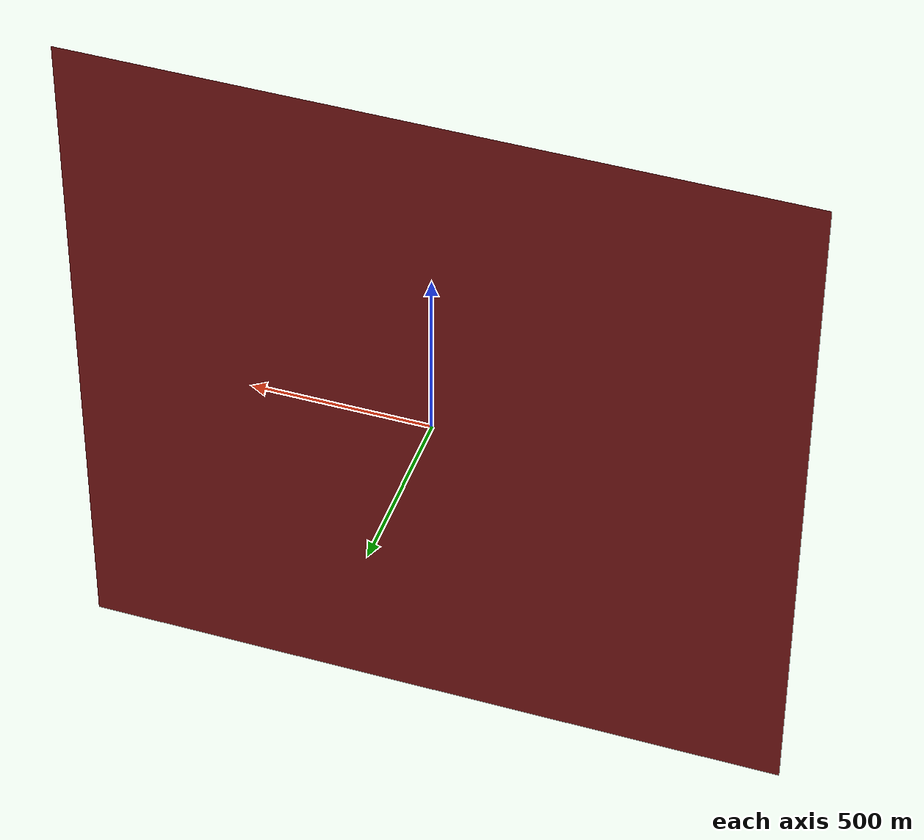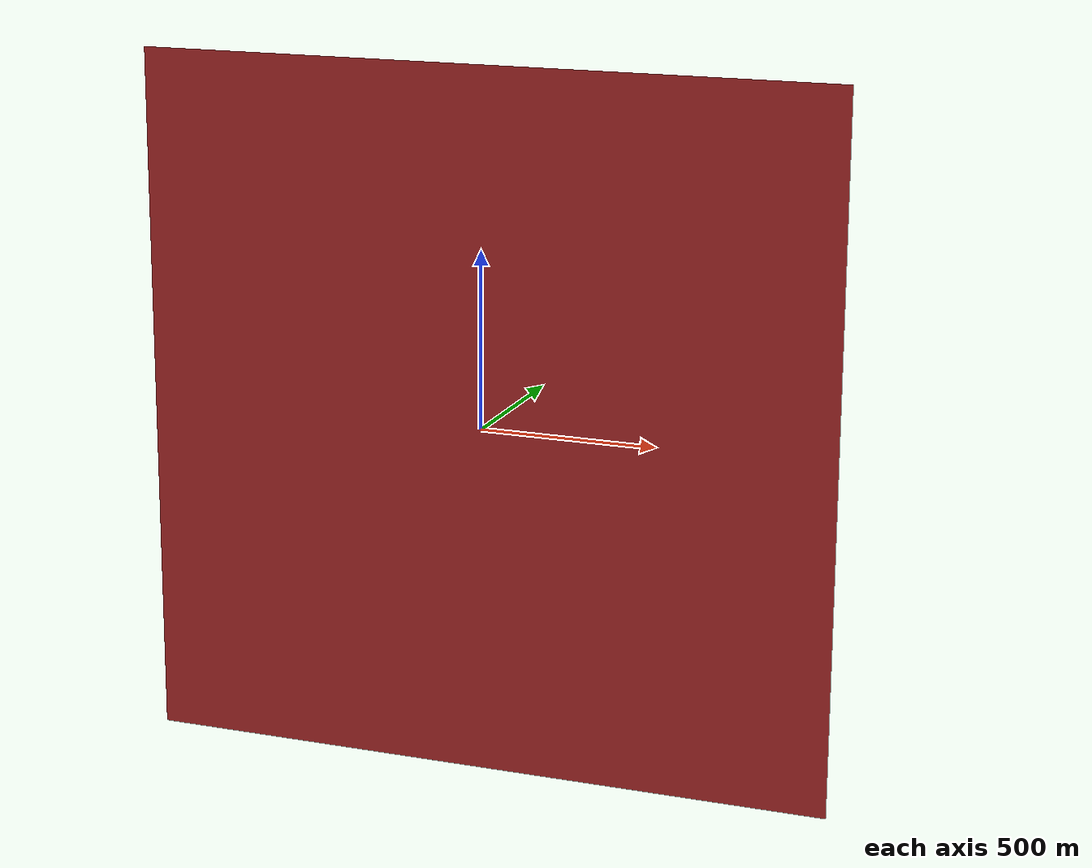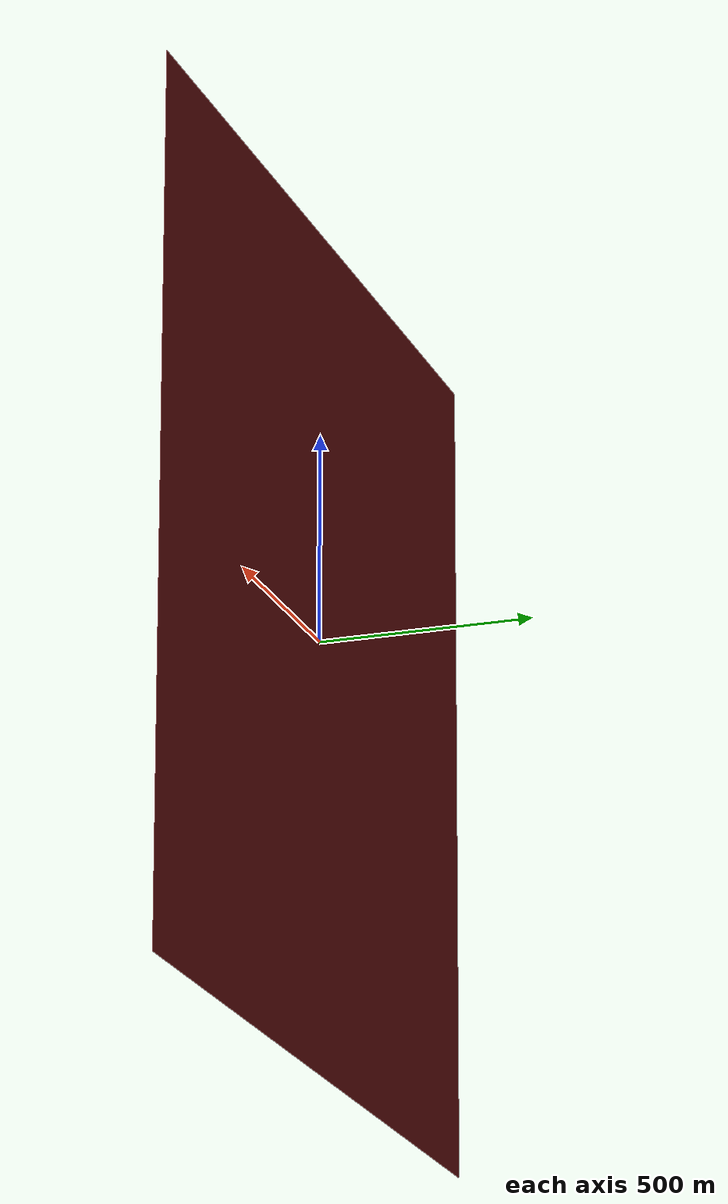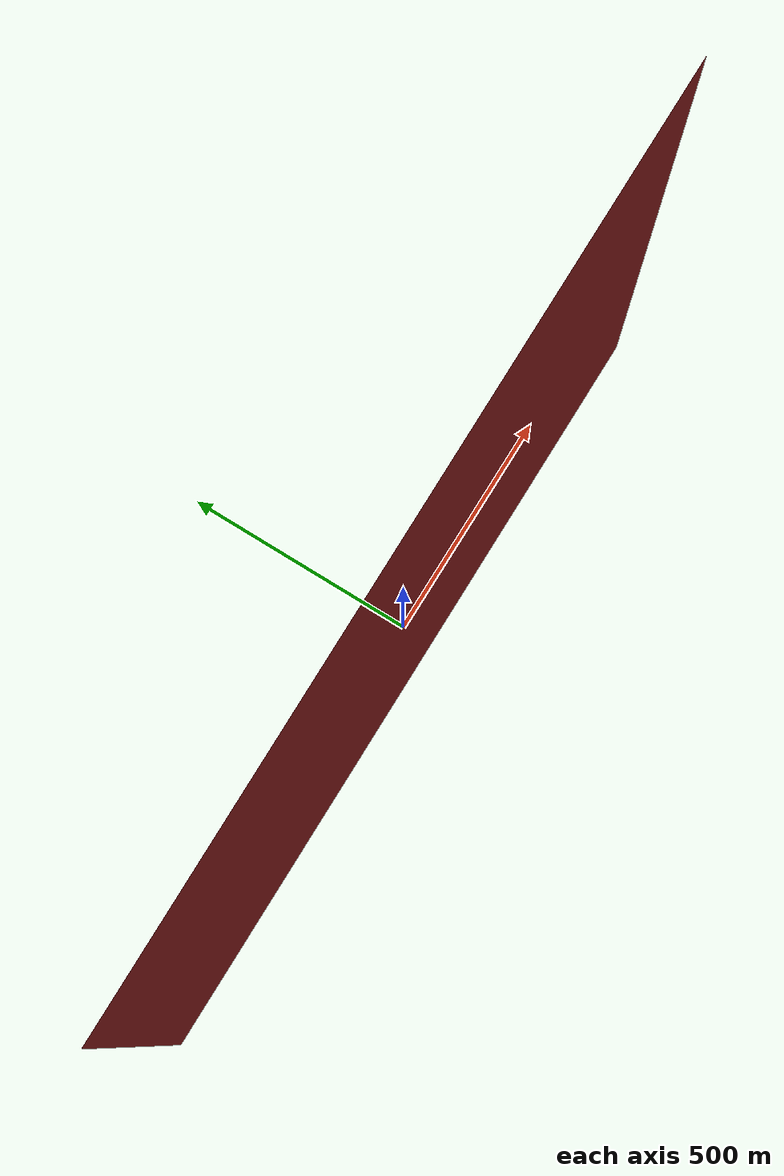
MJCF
<mujoco model="depth_camera_test">
  <option timestep="0.050"/>

  <size njmax="50" nconmax="10" nstack="2000"/>

  <visual>
    <global  offwidth="1280" offheight="720"/>
    <map znear="0.1" zfar="25.0"/>
    <rgba haze=".3 .3 .3 1"/>
  </visual>

  <statistic extent="1.0"/>

  <default>
    <joint type="hinge" pos="0 0 0" axis="0 0 1" damping="0.1"/>
    <motor ctrllimited="true" ctrlrange="-6 6"/>
  </default>

  <asset>
    <texture type="skybox" builtin="gradient" rgb1="0.6 0.6 0.6" rgb2="0 0 0" width="512" height="512"/>

    <texture name="texplane" type="2d" builtin="checker" rgb1=".25 .25 .25" rgb2=".3 .3 .3" width="512" height="512" mark="cross" markrgb=".8 .8 .8"/>

  </asset>

  <worldbody>
    <light directional="true" diffuse=".8 .8 .8" specular=".2 .2 .2" pos="0 0 5" dir="0 0 -1"/>

    <body pos="0 0 1" axisangle="1 0 0 90" mocap="true">
      <geom type="box" size="0.1 0.1 0.01" rgba=".1 .5 .1 1"/>
      <camera name="cam" mode="fixed" fovy="45"/>
    </body>

    <body name="target" pos="0 1 1" mocap="true">
      <geom name="target" type="box" size="1000 0.00000000000001 1000" rgba=".5 .1 .1 1"/>
    </body>
  </worldbody>
</mujoco>
